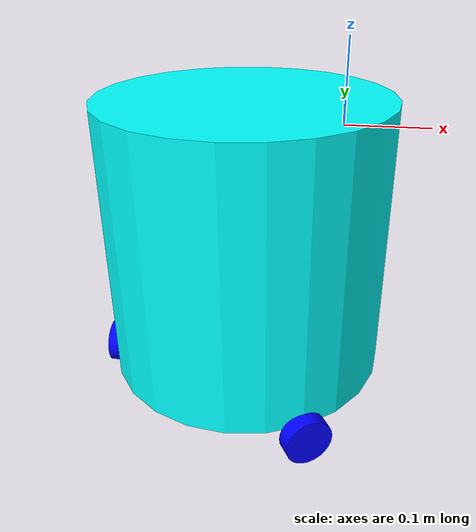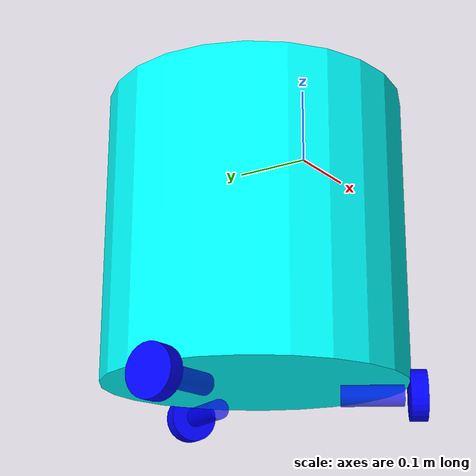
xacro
<?xml version="1.0"?>

<robot name="omre" xmlns:xacro="http://ros.org/wiki/xacro">
<xacro:include filename="$(find omre_description)/urdf/body.urdf.xacro"/>
<xacro:include filename="$(find omre_description)/urdf/wheel.urdf.xacro"/>
<xacro:include filename="$(find omre_description)/urdf/sensors/t265.urdf.xacro"/>

<xacro:property name="M_PI" value="3.1415926535897931"/>
<xacro:property name="cos" value="0.5"/>
<xacro:property name="sin" value="0.866"/>

<xacro:wheel name="wheel0" parent="base_link">
	<origin xyz="-0.135 0 -0.1875" rpy="0 ${M_PI/2} ${M_PI}"/>
</xacro:wheel>

<xacro:wheel name="wheel1" parent="base_link">
	<origin xyz="${cos*0.135} ${sin*0.135} -0.1875" rpy="0 ${M_PI/2} ${M_PI/3}"/>
</xacro:wheel>

<xacro:wheel name="wheel2" parent="base_link">
	<origin xyz="${cos*0.135} -${sin*0.135} -0.1875" rpy="0 ${M_PI/2} -${M_PI/3}"/>
</xacro:wheel>

<xacro:t265 root_link="base_link">
	<origin xyz="-0.117 0 -0.145" rpy="0 0 0"/>
</xacro:t265>

</robot>

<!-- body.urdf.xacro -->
<robot name="omre_body" xmlns:xacro="http://ros.org/wiki/xacro">
	<link name = "base_link">
		<visual>
			<origin xyz="0 0 0" rpy="0 0 0" />
			<geometry>
				<cylinder radius="0.18" length="0.35" />
			</geometry>
			<material name="Cyan">
				<color rgba="0 1.0 1.0 1.0"/>
			</material>
		</visual>
	</link>
</robot>

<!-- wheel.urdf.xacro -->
<robot name="omre_wheel" xmlns:xacro="http://ros.org/wiki/xacro">
<xacro:macro name = "wheel" params="name parent *origin">
	<link name = "${name}_link">
	<visual>
		<origin xyz="0 0 0" rpy="0 0 0" />
		<geometry>
			<cylinder radius="0.03" length="0.02" />
		</geometry>
		<material name="blue">
			<color rgba="0 0 1.0 1.0"/>
		</material>
	</visual>
	</link>

	<link name="${name}_motor_link">
	<visual>
		<origin xyz="0 0 0" rpy="0 0 0" />
		<geometry>
			<cylinder radius="0.0125" length="0.073" />
		</geometry>
		<material name="blue">
			<color rgba="0 0 1.0 0.7"/>
		</material>
	</visual>
	</link>

	<joint name="motor${name}_joint" type="continuous">
		<axis xyz = "0 0 1"/>
		<origin xyz="0 0 0.052" rpy="0 0 0"/>
		<parent link="${name}_motor_link"/>
		<child link="${name}_link"/>
	</joint>

	<joint name="${name}_motor_joint" type="fixed">
		<xacro:insert_block name="origin"/>
		<parent link="${parent}"/>
		<child link="${name}_motor_link"/>
	</joint>

</xacro:macro>

</robot>

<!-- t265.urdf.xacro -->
<robot name="t265_sensor" xmlns:xacro="http://ros.org/wiki/xacro">
<xacro:macro name = "t265" params="root_link *origin">
<link name="camera_pose_frame">
  <visual>
    <origin xyz="0 0 0" rpy="0 0 0" />
    <geometry>
      <box size="0.0125 0.108 0.0245" />
    </geometry>
    <material name="red">
      <color rgba="1 0 0 1.0"/>
    </material>
  </visual>
</link>

<joint name="t265_joint" type="fixed">
  <xacro:insert_block name="origin"/>
  <parent link="camera_pose_frame"/>
  <child link="${root_link}"/>
</joint>

</xacro:macro>

</robot>
